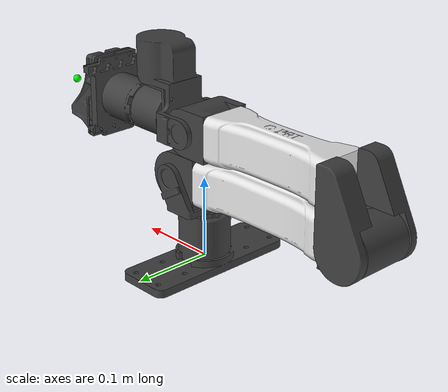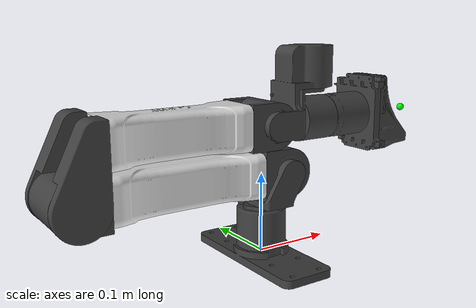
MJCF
<mujoco model="yam_single_arm">
  <compiler angle="radian" meshdir="assets/"/>

  <default>
    <default class="yam">
      <joint frictionloss="0.1"/>
      <general biastype="affine" biasprm="0 -1"/>
      <default class="dm4340">
        <joint armature="0.032"/>
        <general forcerange="-28 28" gainprm="40" biasprm="0 -40 -2.5"/>
      </default>
      <default class="dm4310">
        <joint armature="0.0018"/>
        <general forcerange="-10 10" gainprm="10" biasprm="0 -10 -1"/>
      </default>
      <default class="visual">
        <geom type="mesh" contype="0" conaffinity="0" group="2" density="0" material="black"/>
      </default>
      <default class="collision">
        <geom type="capsule" group="3"/>
        <default class="sphere_collision">
          <geom size="0.0006 0 0" type="sphere" rgba="1 0 0 1"/>
        </default>
      </default>
      <default class="finger">
        <joint type="slide" armature="0.1"/>
        <general ctrlrange="0 0.041" gainprm="100" biasprm="0 -100 -10"/>
      </default>
    </default>
  </default>

  <asset>
    <material name="black" rgba="0.25 0.25 0.25 1"/>
    <material name="white" rgba="0.9 0.9 0.9 1"/>
    <mesh name="model2" file="model2.stl"/>
    <mesh name="model2__2" file="model2__2.stl"/>
    <mesh name="model2__3" file="model2__3.stl"/>
    <mesh name="model2__4" file="model2__4.stl"/>
    <mesh name="model2__5" file="model2__5.stl"/>
    <mesh name="model2__6" file="model2__6.stl"/>
    <mesh name="model2__7" file="model2__7.stl"/>
    <mesh name="model2__8" file="model2__8.stl"/>
    <mesh name="model2__9" file="model2__9.stl"/>
    <mesh name="model2__10" file="model2__10.stl"/>
    <mesh name="model2__11" file="model2__11.stl"/>
    <mesh name="model2__12" file="model2__12.stl"/>
    <mesh name="model2__13" file="model2__13.stl"/>
    <mesh name="model2__14" file="model2__14.stl"/>
    <mesh name="model2__15" file="model2__15.stl"/>
    <mesh name="model2__16" file="model2__16.stl"/>
    <mesh name="model2__17" file="model2__17.stl"/>
  </asset>

  <worldbody>
    <body name="base" childclass="yam" pos="0 0 0">
      <geom class="visual" pos="0 0 -0.0006" quat="0.707107 0 0 0.707107" material="black" mesh="model2"/>
      <geom class="collision" size="0.033 0.01" pos="0 0 0.026"/>
      <body name="link_1" pos="0 0 0.0631" quat="0.707107 0 0 0.707107">
        <inertial pos="-0.00192861 -0.00795735 0.0208176" quat="0.297851 0.642634 0.360045 0.607185" mass="0.12415" diaginertia="0.000180751 0.000145532 5.89179e-05"/>
        <joint name="joint1" class="dm4340" pos="0 0 0" axis="0 0 1" range="-2.61799 3.05433"/>
        <geom class="visual" pos="5.26159e-07 2.34355e-07 -0.0632" quat="1 0 0 0" material="black" mesh="model2__2"/>
        <body name="link_2" pos="2.5e-05 -0.02 0.0409" quat="0.5 0.5 0.5 0.5" gravcomp="1">
          <inertial pos="0.132008 2.10599e-06 0.000293073" quat="0.5 0.5 0.5 0.5" mass="1.24434" diaginertia="0.0121902 0.0121318 0.000683304"/>
          <joint name="joint2" class="dm4340" pos="0 0 0" axis="0 0 1" range="0 3.66519"/>
          <geom class="visual" pos="0.0199992 -0.1041 -2.44738e-05" quat="0.5 -0.5 -0.5 -0.5" material="black" mesh="model2__3"/>
          <geom class="visual" pos="0.0199992 -0.1041 -2.44738e-05" quat="0.5 -0.5 -0.5 -0.5" material="black" mesh="model2__4"/>
          <geom class="visual" pos="0.0199992 -0.1041 -2.44738e-05" quat="0.5 -0.5 -0.5 -0.5" material="white" mesh="model2__5"/>
          <geom class="collision" size="0.032 0.11" pos="0.13 0 0" quat="0.707107 0 0.707107 0"/>
          <geom class="collision" size="0.033 0.02"/>
          <geom class="collision" size="0.033 0.025" pos="0.265 0 0"/>
          <body name="link_3" pos="0.264 0 0" quat="0 1 0 0" gravcomp="1">
            <inertial pos="-0.121816 -0.054846 -0.000111108" quat="0.5 0.5 0.5 0.5" mass="0.853698" diaginertia="0.00699732 0.00696112 0.000788244"/>
            <joint name="joint3" class="dm4340" pos="0 0 0" axis="0 0 1" range="0 3.66519"/>
            <geom class="visual" pos="-0.244001 0.104101 2.44738e-05" quat="0.5 0.5 0.5 -0.5" material="black" mesh="model2__6"/>
            <geom class="visual" pos="-0.244001 0.104101 2.44738e-05" quat="0.5 0.5 0.5 -0.5" material="black" mesh="model2__7"/>
            <geom class="visual" pos="-0.244001 0.104101 2.44738e-05" quat="0.5 0.5 0.5 -0.5" material="white" mesh="model2__8"/>
            <geom class="visual" pos="-0.244001 0.104101 2.44738e-05" quat="0.5 0.5 0.5 -0.5" material="black" mesh="model2__9"/>
            <geom class="collision" size="0.034 0.12" pos="-0.14 -0.06 0" quat="0.707107 0 0.707107 0"/>
            <geom class="collision" size="0.034 0.015" pos="-0.24 -0.06 0"/>
            <body name="link_4" pos="-0.245 -0.06 0" gravcomp="1">
              <inertial pos="-0.0769778 -0.0527104 0.000154878" quat="0.66661 0.66661 -0.235862 -0.235862" mass="0.463511" diaginertia="0.000791532 0.000744733 0.000282116"/>
              <joint name="joint4" class="dm4310" pos="0 0 0" axis="0 0 1" range="-1.5708 1.5708"/>
              <geom class="visual" pos="0.00100023 0.164101 2.44738e-05" quat="0.5 0.5 0.5 -0.5" material="black" mesh="model2__10"/>
              <geom class="collision" size="0.03 0.015" pos="-0.073 -0.06 0" quat="0.707107 0.707107 0 0"/>
              <body name="link_5" pos="-0.074 -0.0395 2.5e-05" quat="0.5 -0.5 0.5 0.5" gravcomp="1">
                <inertial pos="3.64861e-05 0.00025665 0.0353526" mass="0.350962" diaginertia="0.000197802 0.0001775 0.000147402"/>
                <joint name="joint5" class="dm4310" pos="0 0 0" axis="0 0 1" range="-1.5708 1.5708"/>
                <geom class="visual" pos="0 -0.0749971 0.203601" quat="1.32679e-06 1 0 0" material="black" mesh="model2__11"/>
                <geom class="collision" size="0.03 0.015" pos="0 0.025 0.0395" quat="0.707107 0.707107 0 0"/>
                <body name="link_6" pos="0 0.0353 0.0395" quat="0.707107 -0.707107 0 0" gravcomp="1">
                  <inertial pos="-0.000217767 7.37059e-05 0.0270545" quat="0.707107 0.707107 0 0" mass="0.367476" diaginertia="0.000265958 0.000242686 0.000227409"/>
                  <joint name="joint6" class="dm4310" pos="0 0 0" axis="0 0 1" range="-2.0944 2.0944"/>
                  <geom class="visual" pos="0 -0.164101 -0.110597" quat="0.707107 -0.707107 0 0" material="black" mesh="model2__12"/>
                  <geom class="visual" pos="0 -0.164101 -0.110597" quat="0.707107 -0.707107 0 0" material="black" mesh="model2__13"/>
                  <geom class="collision" size="0.01 0.035" pos="0 0.039 0.052" quat="0.707107 0 0.707107 0"/>
                  <geom class="collision" size="0.03 0.005" pos="0 0 0.03" quat="0.707107 0 0 0.707107"/>
                  <geom class="collision" size="0.01 0.035" pos="0 -0.039 0.052" quat="0.707107 0 0.707107 0"/>
                  <body name="tcp" pos="0 0 0" quat="0 0 0 -1">
                    <site name="tcp_site" pos="0 0 0" rgba="1 0 0 1"/>
                    <site name="grasp_site" pos="0 0 0.1347" rgba="0 1 0 1"/>
                  </body>
                  <body name="left_link_finger" pos="-0.037 0.0392 0.0605" quat="0.707107 0 0.707107 0" gravcomp="1">
                    <inertial pos="-0.0192995 -0.0365902 0.039774" quat="0.757517 0.569023 -0.31997 0" mass="0.118" diaginertia="0.000159084 0.000154909 4.63655e-05"/>
                    <joint name="left_finger" class="finger" pos="0 0 0" axis="0 0 1" range="-0.00205 0.037524"/>
                    <geom class="visual" pos="0.171097 -0.203301 0.037" quat="0.5 -0.5 -0.5 -0.5" material="black" mesh="model2__14"/>
                    <geom class="visual" pos="0.171097 -0.203301 0.037" quat="0.5 -0.5 -0.5 -0.5" material="black" mesh="model2__15"/>
                    <body name="lf_rot" pos="0 -0.0392 0.037" quat="0.5 -0.5 -0.5 0.5" gravcomp="1">
                      <geom class="collision" size="0.01 0.03" pos="0 -0.02 0.012" quat="0.707107 0 0.707107 0"/>
                      <geom class="collision" size="0.01 0.02" pos="-0.02 -0.01 0.032" quat="0.371391 0 0.928477 0"/>
                      <body name="lf_down" pos="-0.044 0 0" gravcomp="1">
                        <geom class="collision" size="0.01 0.01" pos="0 -0.02 0.012" quat="0.995037 -0.0995037 0 0"/>
                        <geom class="collision" size="0.003 0.022" pos="0.005 -0.014 0.04" quat="0.980581 -0.196116 0 0"/>
                        <geom class="collision" size="0.003 0.022" pos="-0.005 -0.014 0.04" quat="0.980581 -0.196116 0 0"/>
                        <geom class="collision" size="0.006 0.002 0.04" pos="0 -0.0024 0.046" type="box"/>
                        <geom class="collision" size="0.006 0.002 0.039" pos="0.027 -0.0024 0.053" quat="0.371391 0 0.928477 0" type="box"/>
                      </body>
                    </body>
                  </body>
                  <body name="right_link_finger" pos="0.037 -0.0392 0.0605" quat="0.707107 0 0.707107 0" gravcomp="1">
                    <inertial pos="-0.0192995 0.0365902 -0.039774" quat="-0.757517 0.569023 -0.31997 0" mass="0.118" diaginertia="0.000159084 0.000154909 4.63655e-05"/>
                    <joint name="right_finger" class="finger" pos="0 0 0" axis="0 0 1" range="-0.037524 0.00205"/>
                    <geom class="visual" pos="0.171097 -0.124901 -0.037" quat="0.5 -0.5 -0.5 -0.5" material="black" mesh="model2__16"/>
                    <geom class="visual" pos="0.171097 -0.124901 -0.037" quat="0.5 -0.5 -0.5 -0.5" material="black" mesh="model2__17"/>
                    <body name="rf_rot" pos="0 0.0392 -0.037" quat="0.5 0.5 -0.5 -0.5" gravcomp="1">
                      <geom class="collision" size="0.01 0.03" pos="0 -0.02 0.012" quat="0.707107 0 0.707107 0"/>
                      <geom class="collision" size="0.01 0.02" pos="0.02 -0.01 0.032" quat="0.371391 0 -0.928477 0"/>
                      <body name="rf_down" pos="0.044 0 0" gravcomp="1">
                        <geom class="collision" size="0.01 0.01" pos="0 -0.02 0.012" quat="0.995037 -0.0995037 0 0"/>
                        <geom class="collision" size="0.003 0.022" pos="0.005 -0.014 0.04" quat="0.980581 -0.196116 0 0"/>
                        <geom class="collision" size="0.003 0.022" pos="-0.005 -0.014 0.04" quat="0.980581 -0.196116 0 0"/>
                        <geom class="collision" size="0.006 0.002 0.04" pos="0 -0.0024 0.046" type="box"/>
                        <geom class="collision" size="0.006 0.002 0.039" pos="-0.027 -0.0024 0.053" quat="0.371391 0 -0.928477 0" type="box"/>
                      </body>
                    </body>
                  </body>
                </body>
              </body>
            </body>
          </body>
        </body>
      </body>
    </body>
  </worldbody>

  <equality>
    <joint joint1="left_finger" joint2="right_finger" polycoef="0 -1 0 0 0"/>
  </equality>

  <actuator>
    <general name="joint1" class="dm4340" joint="joint1" ctrlrange="-2.61799 3.05433"/>
    <general name="joint2" class="dm4340" joint="joint2" ctrlrange="0 3.66519"/>
    <general name="joint3" class="dm4340" joint="joint3" ctrlrange="0 3.66519"/>
    <general name="joint4" class="dm4310" joint="joint4" ctrlrange="-1.5708 1.5708" gainprm="20" biasprm="0 -20 -0.5"/>
    <general name="joint5" class="dm4310" joint="joint5" ctrlrange="-1.5708 1.5708"/>
    <general name="joint6" class="dm4310" joint="joint6" ctrlrange="-2.0944 2.0944"/>
    <general name="gripper" class="finger" joint="left_finger"/>
  </actuator>
</mujoco>
